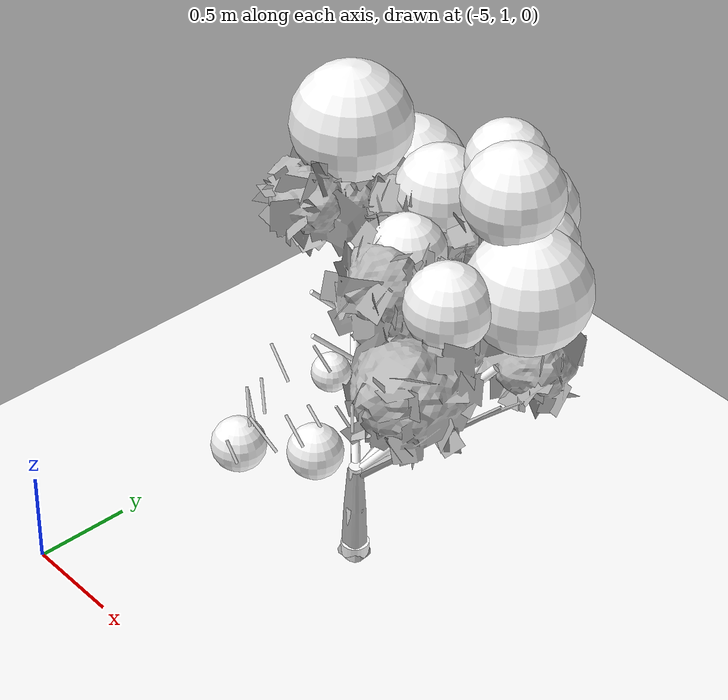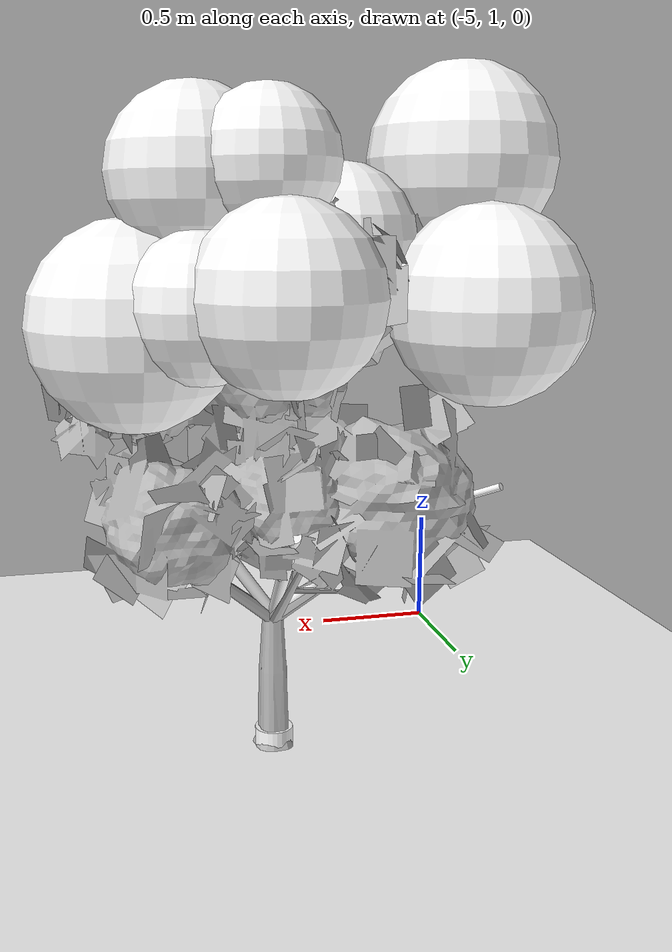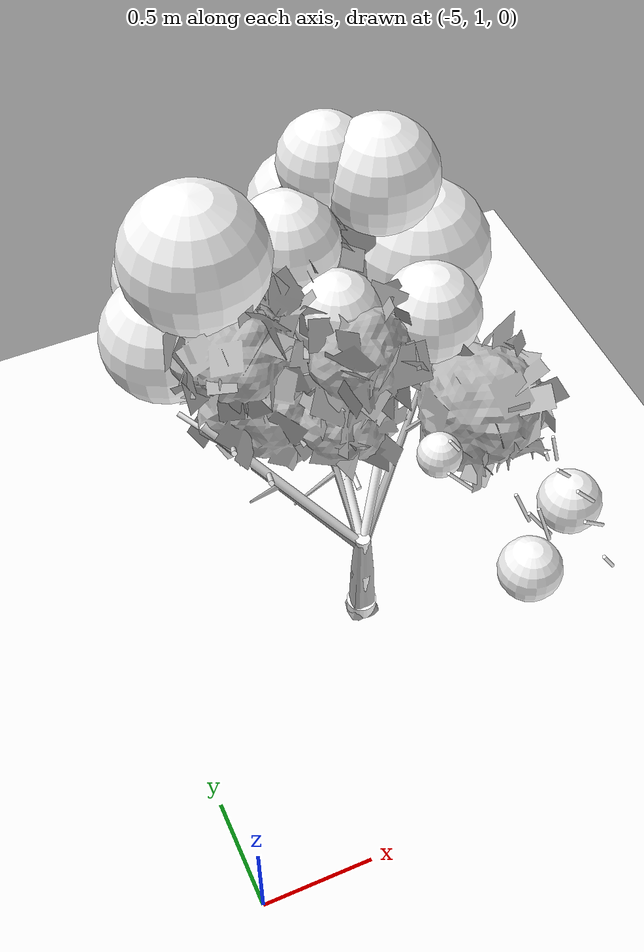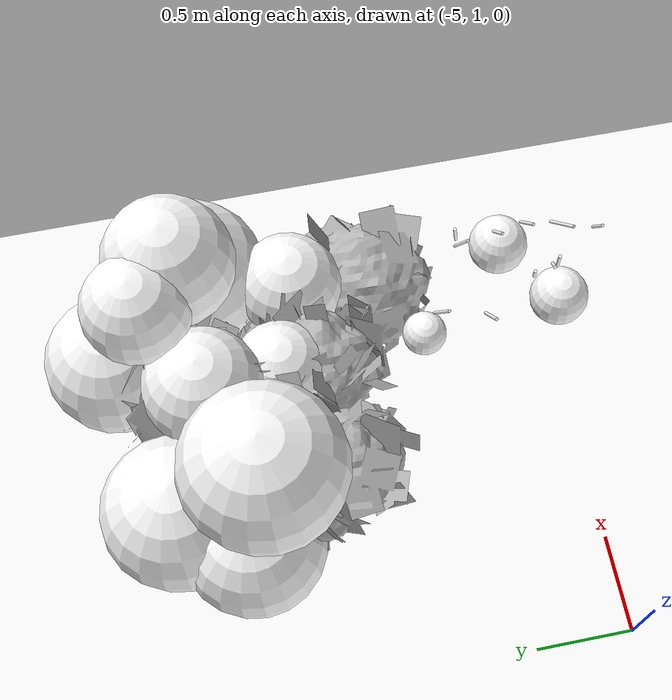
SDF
<sdf version="1.11">
 <world name="peach_orchard">
  <model name="ground">
   <static>true</static>
   <link name="link">
    <visual name="soil">
     <geometry><plane><normal>0 0 1</normal><size>32 22</size></plane></geometry>
     <material>
      <ambient>1 1 1 1</ambient>
      <diffuse>1 1 1 1</diffuse>
      <specular>0.1 0.1 0.1 1</specular>
      <pbr>
       <metal>
        <albedo_map>textures/soil_albedo.png</albedo_map>
        <normal_map type="tangent">textures/soil_normal.png</normal_map>
        <roughness>0.95</roughness>
        <metalness>0</metalness>
       </metal>
      </pbr>
     </material>
    </visual>
    <collision name="c_soil">
     <geometry><plane><normal>0 0 1</normal><size>32 22</size></plane></geometry>
    </collision>
   </link>
  </model>
  <model name="tree_r1_t4">
   <pose>-4 2.2 0 0 0 0</pose>
   <static>true</static>
   <link name="link">
    <visual name="tree_mesh">
     <pose>0 0 0 0 0 -0.0183703</pose>
     <geometry>
      <mesh><uri>model://peach_sim/meshes/peach_tree_a.glb</uri><scale>0.933119 0.933119 0.933119</scale></mesh>
     </geometry>
    </visual>
    <visual name="trunk_0">
     <pose>0 0 0.154171 0 0 0</pose>
     <geometry><cylinder><radius>0.0489997</radius><length>0.308342</length></cylinder></geometry>
     <material>
      <ambient>1 1 1 1</ambient>
      <diffuse>1 1 1 1</diffuse>
      <specular>0.1 0.1 0.1 1</specular>
      <pbr>
       <metal>
        <albedo_map>textures/bark_albedo.png</albedo_map>
        <normal_map type="tangent">textures/bark_normal.png</normal_map>
        <roughness>0.9</roughness>
        <metalness>0</metalness>
       </metal>
      </pbr>
     </material>
    </visual>
    <collision name="c_trunk_0">
     <pose>0 0 0.154171 0 0 0</pose>
     <geometry><cylinder><radius>0.0489997</radius><length>0.308342</length></cylinder></geometry>
    </collision>
    <visual name="trunk_1">
     <pose>0 0 0.434482 0 0 0</pose>
     <geometry><cylinder><radius>0.0352798</radius><length>0.25228</length></cylinder></geometry>
     <material>
      <ambient>1 1 1 1</ambient>
      <diffuse>1 1 1 1</diffuse>
      <specular>0.1 0.1 0.1 1</specular>
      <pbr>
       <metal>
        <albedo_map>textures/bark_albedo.png</albedo_map>
        <normal_map type="tangent">textures/bark_normal.png</normal_map>
        <roughness>0.9</roughness>
        <metalness>0</metalness>
       </metal>
      </pbr>
     </material>
    </visual>
    <collision name="c_trunk_1">
     <pose>0 0 0.434482 0 0 0</pose>
     <geometry><cylinder><radius>0.0352798</radius><length>0.25228</length></cylinder></geometry>
    </collision>
    <visual name="root_flare">
     <pose>0 0 0.035 0 0 0</pose>
     <geometry><cylinder><radius>0.0710495</radius><length>0.07</length></cylinder></geometry>
     <material>
      <ambient>1 1 1 1</ambient>
      <diffuse>1 1 1 1</diffuse>
      <specular>0.1 0.1 0.1 1</specular>
      <pbr>
       <metal>
        <albedo_map>textures/bark_albedo.png</albedo_map>
        <normal_map type="tangent">textures/bark_normal.png</normal_map>
        <roughness>0.95</roughness>
        <metalness>0</metalness>
       </metal>
      </pbr>
     </material>
    </visual>
    <visual name="scaffold_0">
     <pose>0.0467359 0.384014 0.77624 0 0.97821 1.44969</pose>
     <geometry><cylinder><radius>0.022</radius><length>0.932725</length></cylinder></geometry>
     <material>
      <ambient>1 1 1 1</ambient>
      <diffuse>1 1 1 1</diffuse>
      <specular>0.1 0.1 0.1 1</specular>
      <pbr>
       <metal>
        <albedo_map>textures/bark_albedo.png</albedo_map>
        <normal_map type="tangent">textures/bark_normal.png</normal_map>
        <roughness>0.9</roughness>
        <metalness>0</metalness>
       </metal>
      </pbr>
     </material>
    </visual>
    <collision name="c_scaffold_0">
     <pose>0.0467359 0.384014 0.77624 0 0.97821 1.44969</pose>
     <geometry><cylinder><radius>0.022</radius><length>0.932725</length></cylinder></geometry>
    </collision>
    <visual name="branchlet_0_0">
     <pose>0.152528 0.495715 0.987901 0 0.623646 -0.139918</pose>
     <geometry><cylinder><radius>0.012</radius><length>0.313488</length></cylinder></geometry>
     <material>
      <ambient>1 1 1 1</ambient>
      <diffuse>1 1 1 1</diffuse>
      <specular>0.1 0.1 0.1 1</specular>
      <pbr>
       <metal>
        <albedo_map>textures/bark_albedo.png</albedo_map>
        <normal_map type="tangent">textures/bark_normal.png</normal_map>
        <roughness>0.9</roughness>
        <metalness>0</metalness>
       </metal>
      </pbr>
     </material>
    </visual>
    <visual name="branchlet_0_1">
     <pose>0.0715088 0.472778 0.823532 0 1.06105 1.34063</pose>
     <geometry><cylinder><radius>0.012</radius><length>0.291924</length></cylinder></geometry>
     <material>
      <ambient>1 1 1 1</ambient>
      <diffuse>1 1 1 1</diffuse>
      <specular>0.1 0.1 0.1 1</specular>
      <pbr>
       <metal>
        <albedo_map>textures/bark_albedo.png</albedo_map>
        <normal_map type="tangent">textures/bark_normal.png</normal_map>
        <roughness>0.9</roughness>
        <metalness>0</metalness>
       </metal>
      </pbr>
     </material>
    </visual>
    <visual name="branchlet_0_2">
     <pose>0.0462702 0.289748 0.792484 0 1.75414 -1.62483</pose>
     <geometry><cylinder><radius>0.012</radius><length>0.331599</length></cylinder></geometry>
     <material>
      <ambient>1 1 1 1</ambient>
      <diffuse>1 1 1 1</diffuse>
      <specular>0.1 0.1 0.1 1</specular>
      <pbr>
       <metal>
        <albedo_map>textures/bark_albedo.png</albedo_map>
        <normal_map type="tangent">textures/bark_normal.png</normal_map>
        <roughness>0.9</roughness>
        <metalness>0</metalness>
       </metal>
      </pbr>
     </material>
    </visual>
    <visual name="scaffold_1">
     <pose>0.20844 0.256204 0.835303 0 0.801944 0.887835</pose>
     <geometry><cylinder><radius>0.022</radius><length>0.919103</length></cylinder></geometry>
     <material>
      <ambient>1 1 1 1</ambient>
      <diffuse>1 1 1 1</diffuse>
      <specular>0.1 0.1 0.1 1</specular>
      <pbr>
       <metal>
        <albedo_map>textures/bark_albedo.png</albedo_map>
        <normal_map type="tangent">textures/bark_normal.png</normal_map>
        <roughness>0.9</roughness>
        <metalness>0</metalness>
       </metal>
      </pbr>
     </material>
    </visual>
    <collision name="c_scaffold_1">
     <pose>0.20844 0.256204 0.835303 0 0.801944 0.887835</pose>
     <geometry><cylinder><radius>0.022</radius><length>0.919103</length></cylinder></geometry>
    </collision>
    <visual name="branchlet_1_0">
     <pose>0.241754 0.35987 0.971888 0 0.646509 1.41566</pose>
     <geometry><cylinder><radius>0.012</radius><length>0.260914</length></cylinder></geometry>
     <material>
      <ambient>1 1 1 1</ambient>
      <diffuse>1 1 1 1</diffuse>
      <specular>0.1 0.1 0.1 1</specular>
      <pbr>
       <metal>
        <albedo_map>textures/bark_albedo.png</albedo_map>
        <normal_map type="tangent">textures/bark_normal.png</normal_map>
        <roughness>0.9</roughness>
        <metalness>0</metalness>
       </metal>
      </pbr>
     </material>
    </visual>
    <visual name="branchlet_1_1">
     <pose>0.267464 0.49137 1.01103 0 1.39261 1.92834</pose>
     <geometry><cylinder><radius>0.012</radius><length>0.241757</length></cylinder></geometry>
     <material>
      <ambient>1 1 1 1</ambient>
      <diffuse>1 1 1 1</diffuse>
      <specular>0.1 0.1 0.1 1</specular>
      <pbr>
       <metal>
        <albedo_map>textures/bark_albedo.png</albedo_map>
        <normal_map type="tangent">textures/bark_normal.png</normal_map>
        <roughness>0.9</roughness>
        <metalness>0</metalness>
       </metal>
      </pbr>
     </material>
    </visual>
    <visual name="scaffold_2">
     <pose>-0.277267 0.236264 0.814388 0 0.884129 2.43587</pose>
     <geometry><cylinder><radius>0.022</radius><length>0.942058</length></cylinder></geometry>
     <material>
      <ambient>1 1 1 1</ambient>
      <diffuse>1 1 1 1</diffuse>
      <specular>0.1 0.1 0.1 1</specular>
      <pbr>
       <metal>
        <albedo_map>textures/bark_albedo.png</albedo_map>
        <normal_map type="tangent">textures/bark_normal.png</normal_map>
        <roughness>0.9</roughness>
        <metalness>0</metalness>
       </metal>
      </pbr>
     </material>
    </visual>
    <collision name="c_scaffold_2">
     <pose>-0.277267 0.236264 0.814388 0 0.884129 2.43587</pose>
     <geometry><cylinder><radius>0.022</radius><length>0.942058</length></cylinder></geometry>
    </collision>
    <visual name="branchlet_2_0">
     <pose>-0.486315 0.275005 1.12527 0 0.762663 -1.86026</pose>
     <geometry><cylinder><radius>0.012</radius><length>0.335827</length></cylinder></geometry>
     <material>
      <ambient>1 1 1 1</ambient>
      <diffuse>1 1 1 1</diffuse>
      <specular>0.1 0.1 0.1 1</specular>
      <pbr>
       <metal>
        <albedo_map>textures/bark_albedo.png</albedo_map>
        <normal_map type="tangent">textures/bark_normal.png</normal_map>
        <roughness>0.9</roughness>
        <metalness>0</metalness>
       </metal>
      </pbr>
     </material>
    </visual>
    <visual name="branchlet_2_1">
     <pose>-0.36516 0.174807 0.984932 0 0.791249 -1.86948</pose>
     <geometry><cylinder><radius>0.012</radius><length>0.317805</length></cylinder></geometry>
     <material>
      <ambient>1 1 1 1</ambient>
      <diffuse>1 1 1 1</diffuse>
      <specular>0.1 0.1 0.1 1</specular>
      <pbr>
       <metal>
        <albedo_map>textures/bark_albedo.png</albedo_map>
        <normal_map type="tangent">textures/bark_normal.png</normal_map>
        <roughness>0.9</roughness>
        <metalness>0</metalness>
       </metal>
      </pbr>
     </material>
    </visual>
    <visual name="branchlet_2_2">
     <pose>-0.528412 0.477463 1.04193 0 1.17378 2.29395</pose>
     <geometry><cylinder><radius>0.012</radius><length>0.317357</length></cylinder></geometry>
     <material>
      <ambient>1 1 1 1</ambient>
      <diffuse>1 1 1 1</diffuse>
      <specular>0.1 0.1 0.1 1</specular>
      <pbr>
       <metal>
        <albedo_map>textures/bark_albedo.png</albedo_map>
        <normal_map type="tangent">textures/bark_normal.png</normal_map>
        <roughness>0.9</roughness>
        <metalness>0</metalness>
       </metal>
      </pbr>
     </material>
    </visual>
    <visual name="canopy_0">
     <pose>0.355637 0.796889 1.70141 0 0 0</pose>
     <geometry><sphere><radius>0.214192</radius></sphere></geometry>
     <material>
      <ambient>1 1 1 1</ambient>
      <diffuse>1 1 1 1</diffuse>
      <specular>0.1 0.1 0.1 1</specular>
      <pbr>
       <metal>
        <albedo_map>textures/leaf_albedo.png</albedo_map>
        <normal_map type="tangent">textures/leaf_normal.png</normal_map>
        <roughness>0.85</roughness>
        <metalness>0</metalness>
       </metal>
      </pbr>
     </material>
    </visual>
    <collision name="c_canopy_0">
     <pose>0.355637 0.796889 1.70141 0 0 0</pose>
     <geometry><sphere><radius>0.214192</radius></sphere></geometry>
    </collision>
    <visual name="canopy_1">
     <pose>0.522331 0.592676 1.63917 0 0 0</pose>
     <geometry><sphere><radius>0.31021</radius></sphere></geometry>
     <material>
      <ambient>1 1 1 1</ambient>
      <diffuse>1 1 1 1</diffuse>
      <specular>0.1 0.1 0.1 1</specular>
      <pbr>
       <metal>
        <albedo_map>textures/leaf_albedo.png</albedo_map>
        <normal_map type="tangent">textures/leaf_normal.png</normal_map>
        <roughness>0.85</roughness>
        <metalness>0</metalness>
       </metal>
      </pbr>
     </material>
    </visual>
    <collision name="c_canopy_1">
     <pose>0.522331 0.592676 1.63917 0 0 0</pose>
     <geometry><sphere><radius>0.31021</radius></sphere></geometry>
    </collision>
    <visual name="canopy_2">
     <pose>-0.484675 0.765411 1.69358 0 0 0</pose>
     <geometry><sphere><radius>0.296368</radius></sphere></geometry>
     <material>
      <ambient>1 1 1 1</ambient>
      <diffuse>1 1 1 1</diffuse>
      <specular>0.1 0.1 0.1 1</specular>
      <pbr>
       <metal>
        <albedo_map>textures/leaf_albedo.png</albedo_map>
        <normal_map type="tangent">textures/leaf_normal.png</normal_map>
        <roughness>0.85</roughness>
        <metalness>0</metalness>
       </metal>
      </pbr>
     </material>
    </visual>
    <collision name="c_canopy_2">
     <pose>-0.484675 0.765411 1.69358 0 0 0</pose>
     <geometry><sphere><radius>0.296368</radius></sphere></geometry>
    </collision>
    <visual name="canopy_3">
     <pose>0.00954727 0.303925 1.71392 0 0 0</pose>
     <geometry><sphere><radius>0.187721</radius></sphere></geometry>
     <material>
      <ambient>1 1 1 1</ambient>
      <diffuse>1 1 1 1</diffuse>
      <specular>0.1 0.1 0.1 1</specular>
      <pbr>
       <metal>
        <albedo_map>textures/leaf_albedo.png</albedo_map>
        <normal_map type="tangent">textures/leaf_normal.png</normal_map>
        <roughness>0.85</roughness>
        <metalness>0</metalness>
       </metal>
      </pbr>
     </material>
    </visual>
    <visual name="canopy_4">
     <pose>0.388457 0.210283 1.65772 0 0 0</pose>
     <geometry><sphere><radius>0.213643</radius></sphere></geometry>
     <material>
      <ambient>1 1 1 1</ambient>
      <diffuse>1 1 1 1</diffuse>
      <specular>0.1 0.1 0.1 1</specular>
      <pbr>
       <metal>
        <albedo_map>textures/leaf_albedo.png</albedo_map>
        <normal_map type="tangent">textures/leaf_normal.png</normal_map>
        <roughness>0.85</roughness>
        <metalness>0</metalness>
       </metal>
      </pbr>
     </material>
    </visual>
    <visual name="canopy_5">
     <pose>-0.524662 0.420921 2.12022 0 0 0</pose>
     <geometry><sphere><radius>0.300476</radius></sphere></geometry>
     <material>
      <ambient>1 1 1 1</ambient>
      <diffuse>1 1 1 1</diffuse>
      <specular>0.1 0.1 0.1 1</specular>
      <pbr>
       <metal>
        <albedo_map>textures/leaf_albedo.png</albedo_map>
        <normal_map type="tangent">textures/leaf_normal.png</normal_map>
        <roughness>0.85</roughness>
        <metalness>0</metalness>
       </metal>
      </pbr>
     </material>
    </visual>
    <visual name="canopy_6">
     <pose>-0.0834321 0.598695 1.87862 0 0 0</pose>
     <geometry><sphere><radius>0.227262</radius></sphere></geometry>
     <material>
      <ambient>1 1 1 1</ambient>
      <diffuse>1 1 1 1</diffuse>
      <specular>0.1 0.1 0.1 1</specular>
      <pbr>
       <metal>
        <albedo_map>textures/leaf_albedo.png</albedo_map>
        <normal_map type="tangent">textures/leaf_normal.png</normal_map>
        <roughness>0.85</roughness>
        <metalness>0</metalness>
       </metal>
      </pbr>
     </material>
    </visual>
    <visual name="canopy_7">
     <pose>0.349566 0.635952 2.06462 0 0 0</pose>
     <geometry><sphere><radius>0.249268</radius></sphere></geometry>
     <material>
      <ambient>1 1 1 1</ambient>
      <diffuse>1 1 1 1</diffuse>
      <specular>0.1 0.1 0.1 1</specular>
      <pbr>
       <metal>
        <albedo_map>textures/leaf_albedo.png</albedo_map>
        <normal_map type="tangent">textures/leaf_normal.png</normal_map>
        <roughness>0.85</roughness>
        <metalness>0</metalness>
       </metal>
      </pbr>
     </material>
    </visual>
    <visual name="canopy_8">
     <pose>-0.65332 0.51719 1.65969 0 0 0</pose>
     <geometry><sphere><radius>0.271524</radius></sphere></geometry>
     <material>
      <ambient>1 1 1 1</ambient>
      <diffuse>1 1 1 1</diffuse>
      <specular>0.1 0.1 0.1 1</specular>
      <pbr>
       <metal>
        <albedo_map>textures/leaf_albedo.png</albedo_map>
        <normal_map type="tangent">textures/leaf_normal.png</normal_map>
        <roughness>0.85</roughness>
        <metalness>0</metalness>
       </metal>
      </pbr>
     </material>
    </visual>
    <visual name="canopy_9">
     <pose>0.145968 0.921958 1.73128 0 0 0</pose>
     <geometry><sphere><radius>0.270239</radius></sphere></geometry>
     <material>
      <ambient>1 1 1 1</ambient>
      <diffuse>1 1 1 1</diffuse>
      <specular>0.1 0.1 0.1 1</specular>
      <pbr>
       <metal>
        <albedo_map>textures/leaf_albedo.png</albedo_map>
        <normal_map type="tangent">textures/leaf_normal.png</normal_map>
        <roughness>0.85</roughness>
        <metalness>0</metalness>
       </metal>
      </pbr>
     </material>
    </visual>
    <visual name="canopy_10">
     <pose>0.164914 0.77238 2.0942 0 0 0</pose>
     <geometry><sphere><radius>0.202994</radius></sphere></geometry>
     <material>
      <ambient>1 1 1 1</ambient>
      <diffuse>1 1 1 1</diffuse>
      <specular>0.1 0.1 0.1 1</specular>
      <pbr>
       <metal>
        <albedo_map>textures/leaf_albedo.png</albedo_map>
        <normal_map type="tangent">textures/leaf_normal.png</normal_map>
        <roughness>0.85</roughness>
        <metalness>0</metalness>
       </metal>
      </pbr>
     </material>
    </visual>
    <visual name="foliage_0">
     <pose>0.179905 -0.316084 1.42612 0 0 0</pose>
     <geometry><sphere><radius>0.0928127</radius></sphere></geometry>
     <material>
      <ambient>1 1 1 1</ambient>
      <diffuse>1 1 1 1</diffuse>
      <specular>0.1 0.1 0.1 1</specular>
      <pbr>
       <metal>
        <albedo_map>textures/leaf_albedo.png</albedo_map>
        <normal_map type="tangent">textures/leaf_normal.png</normal_map>
        <roughness>0.85</roughness>
        <metalness>0</metalness>
       </metal>
      </pbr>
     </material>
    </visual>
    <visual name="foliage_4">
     <pose>0.258988 -0.925715 1.38744 0 0 0</pose>
     <geometry><sphere><radius>0.126172</radius></sphere></geometry>
     <material>
      <ambient>1 1 1 1</ambient>
      <diffuse>1 1 1 1</diffuse>
      <specular>0.1 0.1 0.1 1</specular>
      <pbr>
       <metal>
        <albedo_map>textures/leaf_albedo.png</albedo_map>
        <normal_map type="tangent">textures/leaf_normal.png</normal_map>
        <roughness>0.85</roughness>
        <metalness>0</metalness>
       </metal>
      </pbr>
     </material>
    </visual>
    <visual name="foliage_8">
     <pose>0.541351 -0.721748 1.41337 0 0 0</pose>
     <geometry><sphere><radius>0.127579</radius></sphere></geometry>
     <material>
      <ambient>1 1 1 1</ambient>
      <diffuse>1 1 1 1</diffuse>
      <specular>0.1 0.1 0.1 1</specular>
      <pbr>
       <metal>
        <albedo_map>textures/leaf_albedo.png</albedo_map>
        <normal_map type="tangent">textures/leaf_normal.png</normal_map>
        <roughness>0.85</roughness>
        <metalness>0</metalness>
       </metal>
      </pbr>
     </material>
    </visual>
    <visual name="twig_0">
     <pose>0.200656 -0.388734 1.553 0 0.544419 -2.60745</pose>
     <geometry><cylinder><radius>0.007</radius><length>0.151355</length></cylinder></geometry>
     <material>
      <ambient>1 1 1 1</ambient>
      <diffuse>1 1 1 1</diffuse>
      <specular>0.1 0.1 0.1 1</specular>
      <pbr>
       <metal>
        <albedo_map>textures/bark_albedo.png</albedo_map>
        <normal_map type="tangent">textures/bark_normal.png</normal_map>
        <roughness>0.9</roughness>
        <metalness>0</metalness>
       </metal>
      </pbr>
     </material>
    </visual>
    <visual name="twig_1">
     <pose>0.127563 -0.57571 1.58455 0 0.620406 -3.09679</pose>
     <geometry><cylinder><radius>0.007</radius><length>0.190015</length></cylinder></geometry>
     <material>
      <ambient>1 1 1 1</ambient>
      <diffuse>1 1 1 1</diffuse>
      <specular>0.1 0.1 0.1 1</specular>
      <pbr>
       <metal>
        <albedo_map>textures/bark_albedo.png</albedo_map>
        <normal_map type="tangent">textures/bark_normal.png</normal_map>
        <roughness>0.9</roughness>
        <metalness>0</metalness>
       </metal>
      </pbr>
     </material>
    </visual>
    <visual name="twig_2">
     <pose>0.274175 -0.794585 1.60057 0 0.399637 2.65395</pose>
     <geometry><cylinder><radius>0.007</radius><length>0.165528</length></cylinder></geometry>
     <material>
      <ambient>1 1 1 1</ambient>
      <diffuse>1 1 1 1</diffuse>
      <specular>0.1 0.1 0.1 1</specular>
      <pbr>
       <metal>
        <albedo_map>textures/bark_albedo.png</albedo_map>
        <normal_map type="tangent">textures/bark_normal.png</normal_map>
        <roughness>0.9</roughness>
        <metalness>0</metalness>
       </metal>
      </pbr>
     </material>
    </visual>
    <visual name="twig_3">
     <pose>0.29911 -0.882822 1.59662 0 0.616232 2.77595</pose>
     <geometry><cylinder><radius>0.007</radius><length>0.164301</length></cylinder></geometry>
     <material>
      <ambient>1 1 1 1</ambient>
      <diffuse>1 1 1 1</diffuse>
      <specular>0.1 0.1 0.1 1</specular>
      <pbr>
       <metal>
        <albedo_map>textures/bark_albedo.png</albedo_map>
        <normal_map type="tangent">textures/bark_normal.png</normal_map>
        <roughness>0.9</roughness>
        <metalness>0</metalness>
       </metal>
      </pbr>
     </material>
    </visual>
    <visual name="twig_4">
     <pose>0.303352 -0.901569 1.61537 0 0.317675 2.62466</pose>
     <geometry><cylinder><radius>0.007</radius><length>0.185132</length></cylinder></geometry>
     <material>
      <ambient>1 1 1 1</ambient>
      <diffuse>1 1 1 1</diffuse>
      <specular>0.1 0.1 0.1 1</specular>
      <pbr>
       <metal>
        <albedo_map>textures/bark_albedo.png</albedo_map>
        <normal_map type="tangent">textures/bark_normal.png</normal_map>
        <roughness>0.9</roughness>
        <metalness>0</metalness>
       </metal>
      </pbr>
     </material>
    </visual>
    <visual name="twig_5">
     <pose>0.454627 -1.11853 1.57412 0 0.532817 -2.99841</pose>
     <geometry><cylinder><radius>0.007</radius><length>0.112842</length></cylinder></geometry>
     <material>
      <ambient>1 1 1 1</ambient>
      <diffuse>1 1 1 1</diffuse>
      <specular>0.1 0.1 0.1 1</specular>
      <pbr>
       <metal>
        <albedo_map>textures/bark_albedo.png</albedo_map>
        <normal_map type="tangent">textures/bark_normal.png</normal_map>
        <roughness>0.9</roughness>
        <metalness>0</metalness>
       </metal>
      </pbr>
     </material>
    </visual>
    <visual name="twig_6">
     <pose>0.525602 -0.548561 1.50553 0 0.511503 -2.45948</pose>
     <geometry><cylinder><radius>0.007</radius><length>0.123596</length></cylinder></geometry>
     <material>
      <ambient>1 1 1 1</ambient>
      <diffuse>1 1 1 1</diffuse>
      <specular>0.1 0.1 0.1 1</specular>
      <pbr>
       <metal>
        <albedo_map>textures/bark_albedo.png</albedo_map>
        <normal_map type="tangent">textures/bark_normal.png</normal_map>
        <roughness>0.9</roughness>
        <metalness>0</metalness>
       </metal>
      </pbr>
     </material>
    </visual>
    <visual name="twig_7">
     <pose>0.570308 -0.532337 1.51284 0 0.233125 2.49107</pose>
     <geometry><cylinder><radius>0.007</radius><length>0.135156</length></cylinder></geometry>
     <material>
      <ambient>1 1 1 1</ambient>
      <diffuse>1 1 1 1</diffuse>
      <specular>0.1 0.1 0.1 1</specular>
      <pbr>
       <metal>
        <albedo_map>textures/bark_albedo.png</albedo_map>
        <normal_map type="tangent">textures/bark_normal.png</normal_map>
        <roughness>0.9</roughness>
        <metalness>0</metalness>
       </metal>
      </pbr>
     </material>
    </visual>
    <visual name="twig_8">
     <pose>0.512875 -0.69615 1.56945 0 0.66859 -2.96377</pose>
     <geometry><cylinder><radius>0.007</radius><length>0.134735</length></cylinder></geometry>
     <material>
      <ambient>1 1 1 1</ambient>
      <diffuse>1 1 1 1</diffuse>
      <specular>0.1 0.1 0.1 1</specular>
      <pbr>
       <metal>
        <albedo_map>textures/bark_albedo.png</albedo_map>
        <normal_map type="tangent">textures/bark_normal.png</normal_map>
        <roughness>0.9</roughness>
        <metalness>0</metalness>
       </metal>
      </pbr>
     </material>
    </visual>
    <visual name="twig_9">
     <pose>0.526974 -0.827948 1.57743 0 0.648143 -2.98525</pose>
     <geometry><cylinder><radius>0.007</radius><length>0.161004</length></cylinder></geometry>
     <material>
      <ambient>1 1 1 1</ambient>
      <diffuse>1 1 1 1</diffuse>
      <specular>0.1 0.1 0.1 1</specular>
      <pbr>
       <metal>
        <albedo_map>textures/bark_albedo.png</albedo_map>
        <normal_map type="tangent">textures/bark_normal.png</normal_map>
        <roughness>0.9</roughness>
        <metalness>0</metalness>
       </metal>
      </pbr>
     </material>
    </visual>
    <visual name="twig_10">
     <pose>0.479469 -0.96471 1.602 0 0.749534 -2.7885</pose>
     <geometry><cylinder><radius>0.007</radius><length>0.193232</length></cylinder></geometry>
     <material>
      <ambient>1 1 1 1</ambient>
      <diffuse>1 1 1 1</diffuse>
      <specular>0.1 0.1 0.1 1</specular>
      <pbr>
       <metal>
        <albedo_map>textures/bark_albedo.png</albedo_map>
        <normal_map type="tangent">textures/bark_normal.png</normal_map>
        <roughness>0.9</roughness>
        <metalness>0</metalness>
       </metal>
      </pbr>
     </material>
    </visual>
   </link>
  </model>
 </world>
</sdf>
